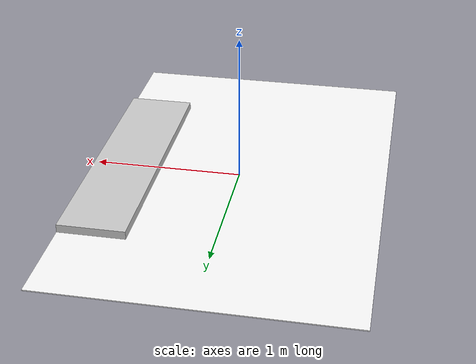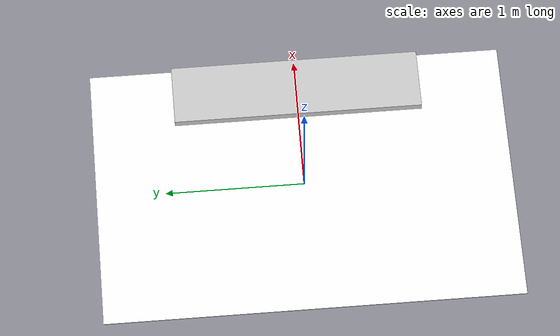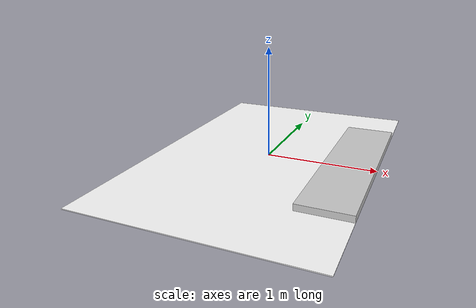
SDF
<?xml version="1.0"?>
<sdf version="1.9">
  <!-- Floor mat: 2 m (X) x 3 m (Y) x 0.007 m (Z) -->
  <model name="floor_mat">
    <static>true</static>

    <link name="floor_link">
      <!-- MAT: collision -->
      <collision name="mat_collision">
        <geometry>
          <box>
            <size>2 3 0.007</size> <!-- 2000mm x 3000mm x 7mm -->
          </box>
        </geometry>
        <surface>
          <friction>
            <ode>
              <mu>0.9</mu>
              <mu2>0.9</mu2>
            </ode>
          </friction>
        </surface>
      </collision>

      <!-- MAT: visual -->
      <visual name="mat_visual">
        <geometry>
          <box>
            <size>2 3 0.007</size> <!-- 2000mm x 3000mm x 7mm -->
          </box>
        </geometry>
        <material>
          <diffuse>1 1 1 1</diffuse>
          <pbr>
            <metal>
              <albedo_map>file://models/mat/table.png</albedo_map>
              <metalness>0.0</metalness>
              <roughness>0.8</roughness>
            </metal>
          </pbr>
        </material>
      </visual>

      <collision name="platform_collision">
        <!-- pose: x y z roll pitch yaw -->
        <pose>0.775 0.0 0.031 0 0 0</pose>
        <geometry>
          <box>
            <!-- size: X Y Z (X = 0.45, Y = 1.8, Z = 0.055) -->
            <size>0.45 1.8 0.055</size>
          </box>
        </geometry>
        <surface>
          <friction>
            <ode>
              <mu>0.9</mu>
              <mu2>0.9</mu2>
            </ode>
          </friction>
        </surface>
      </collision>

      <visual name="platform_visual">
        <pose>0.775 0.0 0.031 0 0 0</pose>
        <geometry>
          <box>
            <size>0.45 1.8 0.055</size>
          </box>
        </geometry>
        <material>
          <!-- Couleur légèrement grisée pour différencier visuellement -->
          <diffuse>0.8 0.8 0.8 1</diffuse>
          <pbr>
            <metal>
              <metalness>0.0</metalness>
              <roughness>0.9</roughness>
            </metal>
          </pbr>
        </material>
      </visual>

    </link>
  </model>
</sdf>
